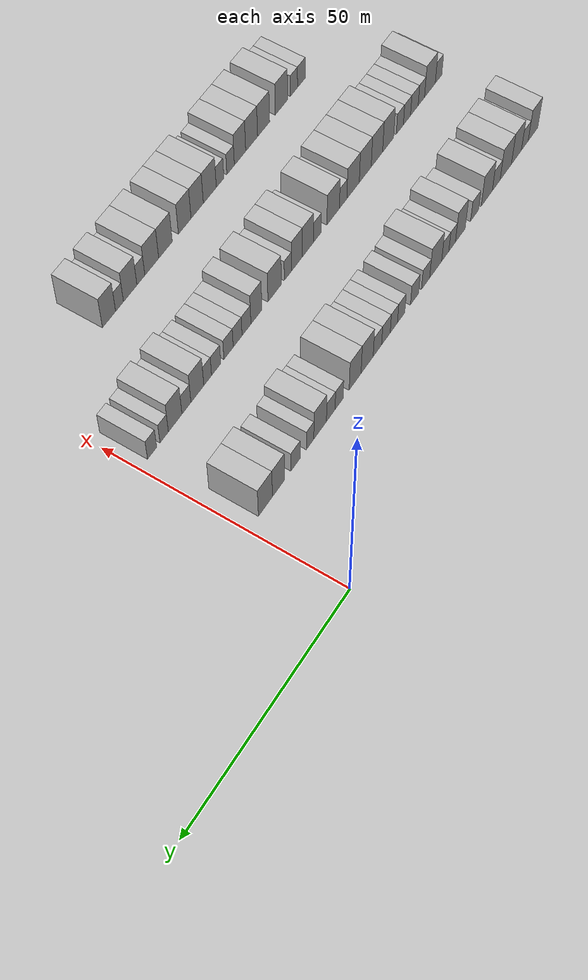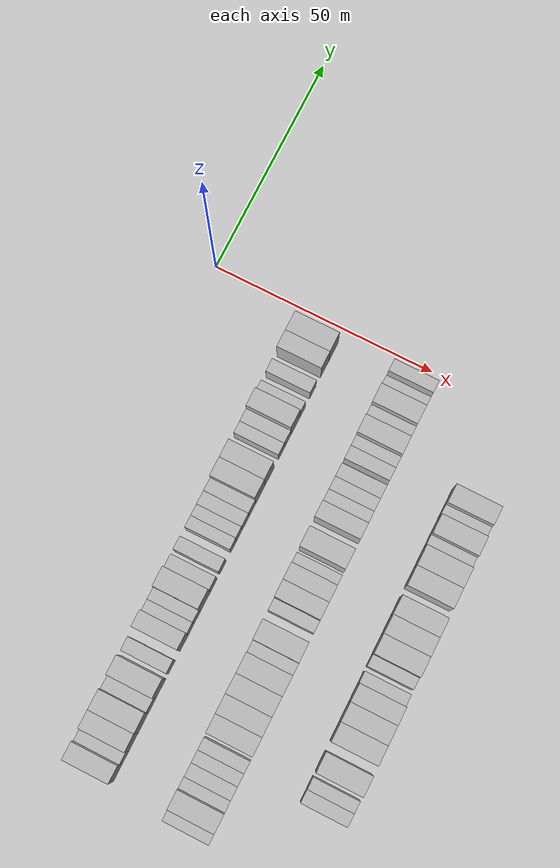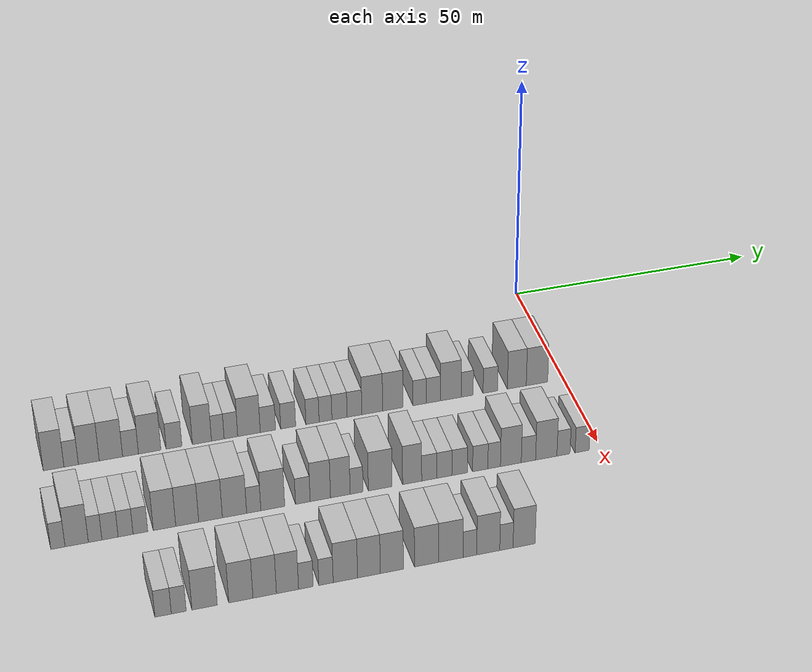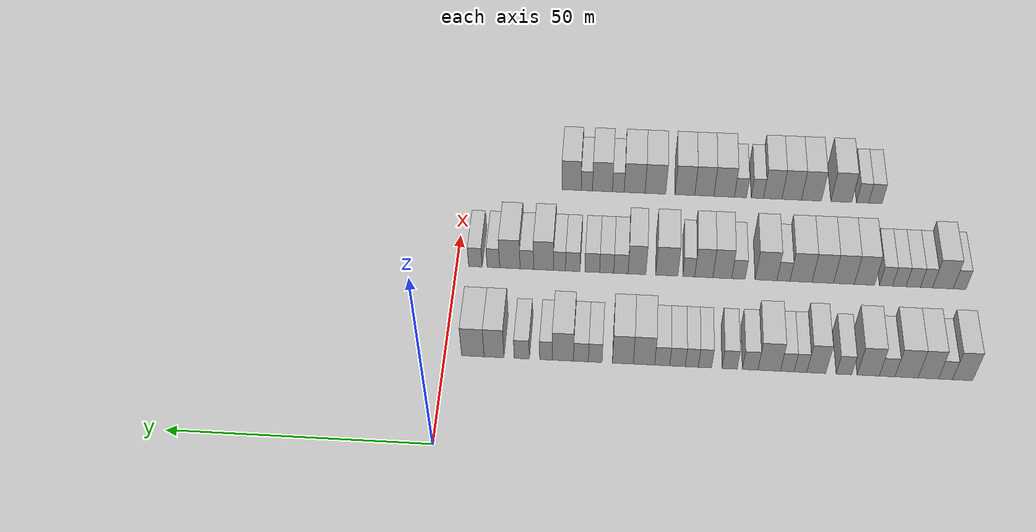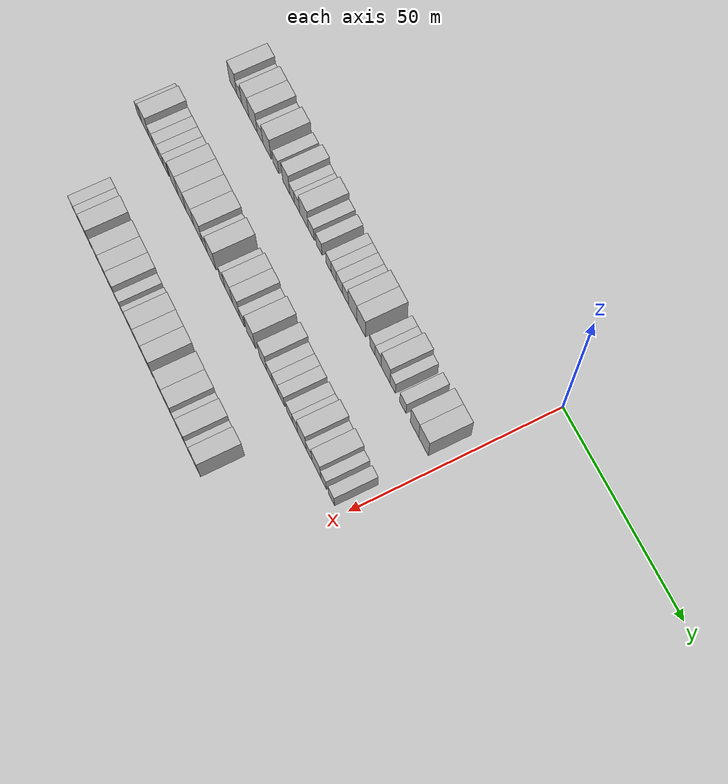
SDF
<sdf version="1.6">
 <world name="default">
  <model name="building_70">
   <static>1</static>
   <pose>25.0000 -99.3986 0 0.000000 0.000000 0.000000</pose>
   <link name="link">
    <pose>0 0 4.50 0 0 0</pose>
    <collision name="collision"><geometry><box><size>10.0000 3.8285 9.0000</size></box></geometry></collision>
    <visual name="visual">
     <cast_shadows>0</cast_shadows>
     <geometry><box><size>10.0000 3.8285 9.0000</size></box></geometry>
     <material>
      <script>
       <uri>model://HANNAS_wall/materials/scripts</uri>
       <uri>model://HANNAS_wall/materials/textures</uri>
       <name>vrc/HANNAS_wall</name>
      </script>
     </material>
    </visual>
   </link>
  </model>
  <model name="building_71">
   <static>1</static>
   <pose>25.0000 -96.1503 0 0.000000 0.000000 0.000000</pose>
   <link name="link">
    <pose>0 0 3.00 0 0 0</pose>
    <collision name="collision"><geometry><box><size>10.0000 2.6681 6.0000</size></box></geometry></collision>
    <visual name="visual">
     <cast_shadows>0</cast_shadows>
     <geometry><box><size>10.0000 2.6681 6.0000</size></box></geometry>
     <material>
      <script>
       <uri>model://HANNAS_wall/materials/scripts</uri>
       <uri>model://HANNAS_wall/materials/textures</uri>
       <name>vrc/HANNAS_wall</name>
      </script>
     </material>
    </visual>
   </link>
  </model>
  <model name="building_72">
   <static>1</static>
   <pose>25.0000 -92.8718 0 0.000000 0.000000 0.000000</pose>
   <link name="link">
    <pose>0 0 4.50 0 0 0</pose>
    <collision name="collision"><geometry><box><size>10.0000 3.8890 9.0000</size></box></geometry></collision>
    <visual name="visual">
     <cast_shadows>0</cast_shadows>
     <geometry><box><size>10.0000 3.8890 9.0000</size></box></geometry>
     <material>
      <script>
       <uri>model://HANNAS_wall/materials/scripts</uri>
       <uri>model://HANNAS_wall/materials/textures</uri>
       <name>vrc/HANNAS_wall</name>
      </script>
     </material>
    </visual>
   </link>
  </model>
  <model name="building_73">
   <static>1</static>
   <pose>25.0000 -88.7429 0 0.000000 0.000000 0.000000</pose>
   <link name="link">
    <pose>0 0 4.50 0 0 0</pose>
    <collision name="collision"><geometry><box><size>10.0000 4.3688 9.0000</size></box></geometry></collision>
    <visual name="visual">
     <cast_shadows>0</cast_shadows>
     <geometry><box><size>10.0000 4.3688 9.0000</size></box></geometry>
     <material>
      <script>
       <uri>model://HANNAS_wall/materials/scripts</uri>
       <uri>model://HANNAS_wall/materials/textures</uri>
       <name>vrc/HANNAS_wall</name>
      </script>
     </material>
    </visual>
   </link>
  </model>
  <model name="building_74">
   <static>1</static>
   <pose>25.0000 -85.0716 0 0.000000 0.000000 0.000000</pose>
   <link name="link">
    <pose>0 0 3.00 0 0 0</pose>
    <collision name="collision"><geometry><box><size>10.0000 2.9738 6.0000</size></box></geometry></collision>
    <visual name="visual">
     <cast_shadows>0</cast_shadows>
     <geometry><box><size>10.0000 2.9738 6.0000</size></box></geometry>
     <material>
      <script>
       <uri>model://HANNAS_wall/materials/scripts</uri>
       <uri>model://HANNAS_wall/materials/textures</uri>
       <name>vrc/HANNAS_wall</name>
      </script>
     </material>
    </visual>
   </link>
  </model>
  <model name="building_75">
   <static>1</static>
   <pose>25.0000 -81.4680 0 0.000000 0.000000 0.000000</pose>
   <link name="link">
    <pose>0 0 4.50 0 0 0</pose>
    <collision name="collision"><geometry><box><size>10.0000 4.2334 9.0000</size></box></geometry></collision>
    <visual name="visual">
     <cast_shadows>0</cast_shadows>
     <geometry><box><size>10.0000 4.2334 9.0000</size></box></geometry>
     <material>
      <script>
       <uri>model://HANNAS_wall/materials/scripts</uri>
       <uri>model://HANNAS_wall/materials/textures</uri>
       <name>vrc/HANNAS_wall</name>
      </script>
     </material>
    </visual>
   </link>
  </model>
  <model name="building_76">
   <static>1</static>
   <pose>25.0000 -76.8639 0 0.000000 0.000000 0.000000</pose>
   <link name="link">
    <pose>0 0 3.00 0 0 0</pose>
    <collision name="collision"><geometry><box><size>10.0000 2.9750 6.0000</size></box></geometry></collision>
    <visual name="visual">
     <cast_shadows>0</cast_shadows>
     <geometry><box><size>10.0000 2.9750 6.0000</size></box></geometry>
     <material>
      <script>
       <uri>model://HANNAS_wall/materials/scripts</uri>
       <uri>model://HANNAS_wall/materials/textures</uri>
       <name>vrc/HANNAS_wall</name>
      </script>
     </material>
    </visual>
   </link>
  </model>
  <model name="building_77">
   <static>1</static>
   <pose>25.0000 -71.5644 0 0.000000 0.000000 0.000000</pose>
   <link name="link">
    <pose>0 0 4.50 0 0 0</pose>
    <collision name="collision"><geometry><box><size>10.0000 3.6239 9.0000</size></box></geometry></collision>
    <visual name="visual">
     <cast_shadows>0</cast_shadows>
     <geometry><box><size>10.0000 3.6239 9.0000</size></box></geometry>
     <material>
      <script>
       <uri>model://HANNAS_wall/materials/scripts</uri>
       <uri>model://HANNAS_wall/materials/textures</uri>
       <name>vrc/HANNAS_wall</name>
      </script>
     </material>
    </visual>
   </link>
  </model>
  <model name="building_78">
   <static>1</static>
   <pose>25.0000 -68.5396 0 0.000000 0.000000 0.000000</pose>
   <link name="link">
    <pose>0 0 3.00 0 0 0</pose>
    <collision name="collision"><geometry><box><size>10.0000 2.4257 6.0000</size></box></geometry></collision>
    <visual name="visual">
     <cast_shadows>0</cast_shadows>
     <geometry><box><size>10.0000 2.4257 6.0000</size></box></geometry>
     <material>
      <script>
       <uri>model://HANNAS_wall/materials/scripts</uri>
       <uri>model://HANNAS_wall/materials/textures</uri>
       <name>vrc/HANNAS_wall</name>
      </script>
     </material>
    </visual>
   </link>
  </model>
  <model name="building_79">
   <static>1</static>
   <pose>25.0000 -66.0237 0 0.000000 0.000000 0.000000</pose>
   <link name="link">
    <pose>0 0 3.00 0 0 0</pose>
    <collision name="collision"><geometry><box><size>10.0000 2.6062 6.0000</size></box></geometry></collision>
    <visual name="visual">
     <cast_shadows>0</cast_shadows>
     <geometry><box><size>10.0000 2.6062 6.0000</size></box></geometry>
     <material>
      <script>
       <uri>model://HANNAS_wall/materials/scripts</uri>
       <uri>model://HANNAS_wall/materials/textures</uri>
       <name>vrc/HANNAS_wall</name>
      </script>
     </material>
    </visual>
   </link>
  </model>
  <model name="building_80">
   <static>1</static>
   <pose>25.0000 -62.5529 0 0.000000 0.000000 0.000000</pose>
   <link name="link">
    <pose>0 0 4.50 0 0 0</pose>
    <collision name="collision"><geometry><box><size>10.0000 4.3352 9.0000</size></box></geometry></collision>
    <visual name="visual">
     <cast_shadows>0</cast_shadows>
     <geometry><box><size>10.0000 4.3352 9.0000</size></box></geometry>
     <material>
      <script>
       <uri>model://HANNAS_wall/materials/scripts</uri>
       <uri>model://HANNAS_wall/materials/textures</uri>
       <name>vrc/HANNAS_wall</name>
      </script>
     </material>
    </visual>
   </link>
  </model>
  <model name="building_81">
   <static>1</static>
   <pose>25.0000 -58.9024 0 0.000000 0.000000 0.000000</pose>
   <link name="link">
    <pose>0 0 3.00 0 0 0</pose>
    <collision name="collision"><geometry><box><size>10.0000 2.9657 6.0000</size></box></geometry></collision>
    <visual name="visual">
     <cast_shadows>0</cast_shadows>
     <geometry><box><size>10.0000 2.9657 6.0000</size></box></geometry>
     <material>
      <script>
       <uri>model://HANNAS_wall/materials/scripts</uri>
       <uri>model://HANNAS_wall/materials/textures</uri>
       <name>vrc/HANNAS_wall</name>
      </script>
     </material>
    </visual>
   </link>
  </model>
  <model name="building_82">
   <static>1</static>
   <pose>25.0000 -54.9708 0 0.000000 0.000000 0.000000</pose>
   <link name="link">
    <pose>0 0 3.00 0 0 0</pose>
    <collision name="collision"><geometry><box><size>10.0000 2.8975 6.0000</size></box></geometry></collision>
    <visual name="visual">
     <cast_shadows>0</cast_shadows>
     <geometry><box><size>10.0000 2.8975 6.0000</size></box></geometry>
     <material>
      <script>
       <uri>model://HANNAS_wall/materials/scripts</uri>
       <uri>model://HANNAS_wall/materials/textures</uri>
       <name>vrc/HANNAS_wall</name>
      </script>
     </material>
    </visual>
   </link>
  </model>
  <model name="building_83">
   <static>1</static>
   <pose>25.0000 -50.2393 0 0.000000 0.000000 0.000000</pose>
   <link name="link">
    <pose>0 0 3.00 0 0 0</pose>
    <collision name="collision"><geometry><box><size>10.0000 2.5655 6.0000</size></box></geometry></collision>
    <visual name="visual">
     <cast_shadows>0</cast_shadows>
     <geometry><box><size>10.0000 2.5655 6.0000</size></box></geometry>
     <material>
      <script>
       <uri>model://HANNAS_wall/materials/scripts</uri>
       <uri>model://HANNAS_wall/materials/textures</uri>
       <name>vrc/HANNAS_wall</name>
      </script>
     </material>
    </visual>
   </link>
  </model>
  <model name="building_84">
   <static>1</static>
   <pose>25.0000 -47.6987 0 0.000000 0.000000 0.000000</pose>
   <link name="link">
    <pose>0 0 3.00 0 0 0</pose>
    <collision name="collision"><geometry><box><size>10.0000 2.5156 6.0000</size></box></geometry></collision>
    <visual name="visual">
     <cast_shadows>0</cast_shadows>
     <geometry><box><size>10.0000 2.5156 6.0000</size></box></geometry>
     <material>
      <script>
       <uri>model://HANNAS_wall/materials/scripts</uri>
       <uri>model://HANNAS_wall/materials/textures</uri>
       <name>vrc/HANNAS_wall</name>
      </script>
     </material>
    </visual>
   </link>
  </model>
  <model name="building_85">
   <static>1</static>
   <pose>25.0000 -44.9505 0 0.000000 0.000000 0.000000</pose>
   <link name="link">
    <pose>0 0 3.00 0 0 0</pose>
    <collision name="collision"><geometry><box><size>10.0000 2.9809 6.0000</size></box></geometry></collision>
    <visual name="visual">
     <cast_shadows>0</cast_shadows>
     <geometry><box><size>10.0000 2.9809 6.0000</size></box></geometry>
     <material>
      <script>
       <uri>model://HANNAS_wall/materials/scripts</uri>
       <uri>model://HANNAS_wall/materials/textures</uri>
       <name>vrc/HANNAS_wall</name>
      </script>
     </material>
    </visual>
   </link>
  </model>
  <model name="building_86">
   <static>1</static>
   <pose>25.0000 -42.0103 0 0.000000 0.000000 0.000000</pose>
   <link name="link">
    <pose>0 0 3.00 0 0 0</pose>
    <collision name="collision"><geometry><box><size>10.0000 2.8996 6.0000</size></box></geometry></collision>
    <visual name="visual">
     <cast_shadows>0</cast_shadows>
     <geometry><box><size>10.0000 2.8996 6.0000</size></box></geometry>
     <material>
      <script>
       <uri>model://HANNAS_wall/materials/scripts</uri>
       <uri>model://HANNAS_wall/materials/textures</uri>
       <name>vrc/HANNAS_wall</name>
      </script>
     </material>
    </visual>
   </link>
  </model>
  <model name="building_87">
   <static>1</static>
   <pose>25.0000 -38.5008 0 0.000000 0.000000 0.000000</pose>
   <link name="link">
    <pose>0 0 4.50 0 0 0</pose>
    <collision name="collision"><geometry><box><size>10.0000 4.1194 9.0000</size></box></geometry></collision>
    <visual name="visual">
     <cast_shadows>0</cast_shadows>
     <geometry><box><size>10.0000 4.1194 9.0000</size></box></geometry>
     <material>
      <script>
       <uri>model://HANNAS_wall/materials/scripts</uri>
       <uri>model://HANNAS_wall/materials/textures</uri>
       <name>vrc/HANNAS_wall</name>
      </script>
     </material>
    </visual>
   </link>
  </model>
  <model name="building_88">
   <static>1</static>
   <pose>25.0000 -34.4337 0 0.000000 0.000000 0.000000</pose>
   <link name="link">
    <pose>0 0 4.50 0 0 0</pose>
    <collision name="collision"><geometry><box><size>10.0000 4.0149 9.0000</size></box></geometry></collision>
    <visual name="visual">
     <cast_shadows>0</cast_shadows>
     <geometry><box><size>10.0000 4.0149 9.0000</size></box></geometry>
     <material>
      <script>
       <uri>model://HANNAS_wall/materials/scripts</uri>
       <uri>model://HANNAS_wall/materials/textures</uri>
       <name>vrc/HANNAS_wall</name>
      </script>
     </material>
    </visual>
   </link>
  </model>
  <model name="building_89">
   <static>1</static>
   <pose>25.0000 -29.0971 0 0.000000 0.000000 0.000000</pose>
   <link name="link">
    <pose>0 0 3.00 0 0 0</pose>
    <collision name="collision"><geometry><box><size>10.0000 2.6582 6.0000</size></box></geometry></collision>
    <visual name="visual">
     <cast_shadows>0</cast_shadows>
     <geometry><box><size>10.0000 2.6582 6.0000</size></box></geometry>
     <material>
      <script>
       <uri>model://HANNAS_wall/materials/scripts</uri>
       <uri>model://HANNAS_wall/materials/textures</uri>
       <name>vrc/HANNAS_wall</name>
      </script>
     </material>
    </visual>
   </link>
  </model>
  <model name="building_90">
   <static>1</static>
   <pose>25.0000 -26.3386 0 0.000000 0.000000 0.000000</pose>
   <link name="link">
    <pose>0 0 3.00 0 0 0</pose>
    <collision name="collision"><geometry><box><size>10.0000 2.8587 6.0000</size></box></geometry></collision>
    <visual name="visual">
     <cast_shadows>0</cast_shadows>
     <geometry><box><size>10.0000 2.8587 6.0000</size></box></geometry>
     <material>
      <script>
       <uri>model://HANNAS_wall/materials/scripts</uri>
       <uri>model://HANNAS_wall/materials/textures</uri>
       <name>vrc/HANNAS_wall</name>
      </script>
     </material>
    </visual>
   </link>
  </model>
  <model name="building_91">
   <static>1</static>
   <pose>25.0000 -22.8489 0 0.000000 0.000000 0.000000</pose>
   <link name="link">
    <pose>0 0 4.50 0 0 0</pose>
    <collision name="collision"><geometry><box><size>10.0000 4.1208 9.0000</size></box></geometry></collision>
    <visual name="visual">
     <cast_shadows>0</cast_shadows>
     <geometry><box><size>10.0000 4.1208 9.0000</size></box></geometry>
     <material>
      <script>
       <uri>model://HANNAS_wall/materials/scripts</uri>
       <uri>model://HANNAS_wall/materials/textures</uri>
       <name>vrc/HANNAS_wall</name>
      </script>
     </material>
    </visual>
   </link>
  </model>
  <model name="building_92">
   <static>1</static>
   <pose>25.0000 -19.5734 0 0.000000 0.000000 0.000000</pose>
   <link name="link">
    <pose>0 0 3.00 0 0 0</pose>
    <collision name="collision"><geometry><box><size>10.0000 2.4303 6.0000</size></box></geometry></collision>
    <visual name="visual">
     <cast_shadows>0</cast_shadows>
     <geometry><box><size>10.0000 2.4303 6.0000</size></box></geometry>
     <material>
      <script>
       <uri>model://HANNAS_wall/materials/scripts</uri>
       <uri>model://HANNAS_wall/materials/textures</uri>
       <name>vrc/HANNAS_wall</name>
      </script>
     </material>
    </visual>
   </link>
  </model>
  <model name="building_93">
   <static>1</static>
   <pose>25.0000 -14.8907 0 0.000000 0.000000 0.000000</pose>
   <link name="link">
    <pose>0 0 3.00 0 0 0</pose>
    <collision name="collision"><geometry><box><size>10.0000 2.9351 6.0000</size></box></geometry></collision>
    <visual name="visual">
     <cast_shadows>0</cast_shadows>
     <geometry><box><size>10.0000 2.9351 6.0000</size></box></geometry>
     <material>
      <script>
       <uri>model://HANNAS_wall/materials/scripts</uri>
       <uri>model://HANNAS_wall/materials/textures</uri>
       <name>vrc/HANNAS_wall</name>
      </script>
     </material>
    </visual>
   </link>
  </model>
  <model name="building_94">
   <static>1</static>
   <pose>25.0000 -9.5051 0 0.000000 0.000000 0.000000</pose>
   <link name="link">
    <pose>0 0 4.50 0 0 0</pose>
    <collision name="collision"><geometry><box><size>10.0000 3.8361 9.0000</size></box></geometry></collision>
    <visual name="visual">
     <cast_shadows>0</cast_shadows>
     <geometry><box><size>10.0000 3.8361 9.0000</size></box></geometry>
     <material>
      <script>
       <uri>model://HANNAS_wall/materials/scripts</uri>
       <uri>model://HANNAS_wall/materials/textures</uri>
       <name>vrc/HANNAS_wall</name>
      </script>
     </material>
    </visual>
   </link>
  </model>
  <model name="building_95">
   <static>1</static>
   <pose>25.0000 -5.3974 0 0.000000 0.000000 0.000000</pose>
   <link name="link">
    <pose>0 0 4.50 0 0 0</pose>
    <collision name="collision"><geometry><box><size>10.0000 4.3794 9.0000</size></box></geometry></collision>
    <visual name="visual">
     <cast_shadows>0</cast_shadows>
     <geometry><box><size>10.0000 4.3794 9.0000</size></box></geometry>
     <material>
      <script>
       <uri>model://HANNAS_wall/materials/scripts</uri>
       <uri>model://HANNAS_wall/materials/textures</uri>
       <name>vrc/HANNAS_wall</name>
      </script>
     </material>
    </visual>
   </link>
  </model>
  <model name="building_255">
   <static>1</static>
   <pose>47.0000 -101.6480 0 0.000000 0.000000 0.000000</pose>
   <link name="link">
    <pose>0 0 3.00 0 0 0</pose>
    <collision name="collision"><geometry><box><size>10.0000 2.5138 6.0000</size></box></geometry></collision>
    <visual name="visual">
     <cast_shadows>0</cast_shadows>
     <geometry><box><size>10.0000 2.5138 6.0000</size></box></geometry>
     <material>
      <script>
       <uri>model://HANNAS_wall/materials/scripts</uri>
       <uri>model://HANNAS_wall/materials/textures</uri>
       <name>vrc/HANNAS_wall</name>
      </script>
     </material>
    </visual>
   </link>
  </model>
  <model name="building_256">
   <static>1</static>
   <pose>47.0000 -98.3230 0 0.000000 0.000000 0.000000</pose>
   <link name="link">
    <pose>0 0 4.50 0 0 0</pose>
    <collision name="collision"><geometry><box><size>10.0000 4.1362 9.0000</size></box></geometry></collision>
    <visual name="visual">
     <cast_shadows>0</cast_shadows>
     <geometry><box><size>10.0000 4.1362 9.0000</size></box></geometry>
     <material>
      <script>
       <uri>model://HANNAS_wall/materials/scripts</uri>
       <uri>model://HANNAS_wall/materials/textures</uri>
       <name>vrc/HANNAS_wall</name>
      </script>
     </material>
    </visual>
   </link>
  </model>
  <model name="building_257">
   <static>1</static>
   <pose>47.0000 -95.0456 0 0.000000 0.000000 0.000000</pose>
   <link name="link">
    <pose>0 0 3.00 0 0 0</pose>
    <collision name="collision"><geometry><box><size>10.0000 2.4186 6.0000</size></box></geometry></collision>
    <visual name="visual">
     <cast_shadows>0</cast_shadows>
     <geometry><box><size>10.0000 2.4186 6.0000</size></box></geometry>
     <material>
      <script>
       <uri>model://HANNAS_wall/materials/scripts</uri>
       <uri>model://HANNAS_wall/materials/textures</uri>
       <name>vrc/HANNAS_wall</name>
      </script>
     </material>
    </visual>
   </link>
  </model>
  <model name="building_258">
   <static>1</static>
   <pose>47.0000 -92.3847 0 0.000000 0.000000 0.000000</pose>
   <link name="link">
    <pose>0 0 3.00 0 0 0</pose>
    <collision name="collision"><geometry><box><size>10.0000 2.9033 6.0000</size></box></geometry></collision>
    <visual name="visual">
     <cast_shadows>0</cast_shadows>
     <geometry><box><size>10.0000 2.9033 6.0000</size></box></geometry>
     <material>
      <script>
       <uri>model://HANNAS_wall/materials/scripts</uri>
       <uri>model://HANNAS_wall/materials/textures</uri>
       <name>vrc/HANNAS_wall</name>
      </script>
     </material>
    </visual>
   </link>
  </model>
  <model name="building_259">
   <static>1</static>
   <pose>47.0000 -89.5965 0 0.000000 0.000000 0.000000</pose>
   <link name="link">
    <pose>0 0 3.00 0 0 0</pose>
    <collision name="collision"><geometry><box><size>10.0000 2.6732 6.0000</size></box></geometry></collision>
    <visual name="visual">
     <cast_shadows>0</cast_shadows>
     <geometry><box><size>10.0000 2.6732 6.0000</size></box></geometry>
     <material>
      <script>
       <uri>model://HANNAS_wall/materials/scripts</uri>
       <uri>model://HANNAS_wall/materials/textures</uri>
       <name>vrc/HANNAS_wall</name>
      </script>
     </material>
    </visual>
   </link>
  </model>
  <model name="building_260">
   <static>1</static>
   <pose>47.0000 -86.9411 0 0.000000 0.000000 0.000000</pose>
   <link name="link">
    <pose>0 0 3.00 0 0 0</pose>
    <collision name="collision"><geometry><box><size>10.0000 2.6376 6.0000</size></box></geometry></collision>
    <visual name="visual">
     <cast_shadows>0</cast_shadows>
     <geometry><box><size>10.0000 2.6376 6.0000</size></box></geometry>
     <material>
      <script>
       <uri>model://HANNAS_wall/materials/scripts</uri>
       <uri>model://HANNAS_wall/materials/textures</uri>
       <name>vrc/HANNAS_wall</name>
      </script>
     </material>
    </visual>
   </link>
  </model>
  <model name="building_261">
   <static>1</static>
   <pose>47.0000 -82.5953 0 0.000000 0.000000 0.000000</pose>
   <link name="link">
    <pose>0 0 4.50 0 0 0</pose>
    <collision name="collision"><geometry><box><size>10.0000 4.0540 9.0000</size></box></geometry></collision>
    <visual name="visual">
     <cast_shadows>0</cast_shadows>
     <geometry><box><size>10.0000 4.0540 9.0000</size></box></geometry>
     <material>
      <script>
       <uri>model://HANNAS_wall/materials/scripts</uri>
       <uri>model://HANNAS_wall/materials/textures</uri>
       <name>vrc/HANNAS_wall</name>
      </script>
     </material>
    </visual>
   </link>
  </model>
  <model name="building_262">
   <static>1</static>
   <pose>47.0000 -78.4835 0 0.000000 0.000000 0.000000</pose>
   <link name="link">
    <pose>0 0 4.50 0 0 0</pose>
    <collision name="collision"><geometry><box><size>10.0000 4.1696 9.0000</size></box></geometry></collision>
    <visual name="visual">
     <cast_shadows>0</cast_shadows>
     <geometry><box><size>10.0000 4.1696 9.0000</size></box></geometry>
     <material>
      <script>
       <uri>model://HANNAS_wall/materials/scripts</uri>
       <uri>model://HANNAS_wall/materials/textures</uri>
       <name>vrc/HANNAS_wall</name>
      </script>
     </material>
    </visual>
   </link>
  </model>
  <model name="building_263">
   <static>1</static>
   <pose>47.0000 -74.2393 0 0.000000 0.000000 0.000000</pose>
   <link name="link">
    <pose>0 0 4.50 0 0 0</pose>
    <collision name="collision"><geometry><box><size>10.0000 4.3189 9.0000</size></box></geometry></collision>
    <visual name="visual">
     <cast_shadows>0</cast_shadows>
     <geometry><box><size>10.0000 4.3189 9.0000</size></box></geometry>
     <material>
      <script>
       <uri>model://HANNAS_wall/materials/scripts</uri>
       <uri>model://HANNAS_wall/materials/textures</uri>
       <name>vrc/HANNAS_wall</name>
      </script>
     </material>
    </visual>
   </link>
  </model>
  <model name="building_264">
   <static>1</static>
   <pose>47.0000 -69.8596 0 0.000000 0.000000 0.000000</pose>
   <link name="link">
    <pose>0 0 4.50 0 0 0</pose>
    <collision name="collision"><geometry><box><size>10.0000 4.4404 9.0000</size></box></geometry></collision>
    <visual name="visual">
     <cast_shadows>0</cast_shadows>
     <geometry><box><size>10.0000 4.4404 9.0000</size></box></geometry>
     <material>
      <script>
       <uri>model://HANNAS_wall/materials/scripts</uri>
       <uri>model://HANNAS_wall/materials/textures</uri>
       <name>vrc/HANNAS_wall</name>
      </script>
     </material>
    </visual>
   </link>
  </model>
  <model name="building_265">
   <static>1</static>
   <pose>47.0000 -66.3290 0 0.000000 0.000000 0.000000</pose>
   <link name="link">
    <pose>0 0 3.00 0 0 0</pose>
    <collision name="collision"><geometry><box><size>10.0000 2.6208 6.0000</size></box></geometry></collision>
    <visual name="visual">
     <cast_shadows>0</cast_shadows>
     <geometry><box><size>10.0000 2.6208 6.0000</size></box></geometry>
     <material>
      <script>
       <uri>model://HANNAS_wall/materials/scripts</uri>
       <uri>model://HANNAS_wall/materials/textures</uri>
       <name>vrc/HANNAS_wall</name>
      </script>
     </material>
    </visual>
   </link>
  </model>
  <model name="building_266">
   <static>1</static>
   <pose>47.0000 -62.8122 0 0.000000 0.000000 0.000000</pose>
   <link name="link">
    <pose>0 0 4.50 0 0 0</pose>
    <collision name="collision"><geometry><box><size>10.0000 4.4129 9.0000</size></box></geometry></collision>
    <visual name="visual">
     <cast_shadows>0</cast_shadows>
     <geometry><box><size>10.0000 4.4129 9.0000</size></box></geometry>
     <material>
      <script>
       <uri>model://HANNAS_wall/materials/scripts</uri>
       <uri>model://HANNAS_wall/materials/textures</uri>
       <name>vrc/HANNAS_wall</name>
      </script>
     </material>
    </visual>
   </link>
  </model>
  <model name="building_267">
   <static>1</static>
   <pose>47.0000 -57.2427 0 0.000000 0.000000 0.000000</pose>
   <link name="link">
    <pose>0 0 3.00 0 0 0</pose>
    <collision name="collision"><geometry><box><size>10.0000 2.7260 6.0000</size></box></geometry></collision>
    <visual name="visual">
     <cast_shadows>0</cast_shadows>
     <geometry><box><size>10.0000 2.7260 6.0000</size></box></geometry>
     <material>
      <script>
       <uri>model://HANNAS_wall/materials/scripts</uri>
       <uri>model://HANNAS_wall/materials/textures</uri>
       <name>vrc/HANNAS_wall</name>
      </script>
     </material>
    </visual>
   </link>
  </model>
  <model name="building_268">
   <static>1</static>
   <pose>47.0000 -53.9769 0 0.000000 0.000000 0.000000</pose>
   <link name="link">
    <pose>0 0 4.50 0 0 0</pose>
    <collision name="collision"><geometry><box><size>10.0000 3.8057 9.0000</size></box></geometry></collision>
    <visual name="visual">
     <cast_shadows>0</cast_shadows>
     <geometry><box><size>10.0000 3.8057 9.0000</size></box></geometry>
     <material>
      <script>
       <uri>model://HANNAS_wall/materials/scripts</uri>
       <uri>model://HANNAS_wall/materials/textures</uri>
       <name>vrc/HANNAS_wall</name>
      </script>
     </material>
    </visual>
   </link>
  </model>
  <model name="building_269">
   <static>1</static>
   <pose>47.0000 -50.2332 0 0.000000 0.000000 0.000000</pose>
   <link name="link">
    <pose>0 0 4.50 0 0 0</pose>
    <collision name="collision"><geometry><box><size>10.0000 3.6818 9.0000</size></box></geometry></collision>
    <visual name="visual">
     <cast_shadows>0</cast_shadows>
     <geometry><box><size>10.0000 3.6818 9.0000</size></box></geometry>
     <material>
      <script>
       <uri>model://HANNAS_wall/materials/scripts</uri>
       <uri>model://HANNAS_wall/materials/textures</uri>
       <name>vrc/HANNAS_wall</name>
      </script>
     </material>
    </visual>
   </link>
  </model>
  <model name="building_270">
   <static>1</static>
   <pose>47.0000 -47.1826 0 0.000000 0.000000 0.000000</pose>
   <link name="link">
    <pose>0 0 3.00 0 0 0</pose>
    <collision name="collision"><geometry><box><size>10.0000 2.4194 6.0000</size></box></geometry></collision>
    <visual name="visual">
     <cast_shadows>0</cast_shadows>
     <geometry><box><size>10.0000 2.4194 6.0000</size></box></geometry>
     <material>
      <script>
       <uri>model://HANNAS_wall/materials/scripts</uri>
       <uri>model://HANNAS_wall/materials/textures</uri>
       <name>vrc/HANNAS_wall</name>
      </script>
     </material>
    </visual>
   </link>
  </model>
  <model name="building_271">
   <static>1</static>
   <pose>47.0000 -42.7311 0 0.000000 0.000000 0.000000</pose>
   <link name="link">
    <pose>0 0 4.50 0 0 0</pose>
    <collision name="collision"><geometry><box><size>10.0000 4.4836 9.0000</size></box></geometry></collision>
    <visual name="visual">
     <cast_shadows>0</cast_shadows>
     <geometry><box><size>10.0000 4.4836 9.0000</size></box></geometry>
     <material>
      <script>
       <uri>model://HANNAS_wall/materials/scripts</uri>
       <uri>model://HANNAS_wall/materials/textures</uri>
       <name>vrc/HANNAS_wall</name>
      </script>
     </material>
    </visual>
   </link>
  </model>
  <model name="building_272">
   <static>1</static>
   <pose>47.0000 -36.6757 0 0.000000 0.000000 0.000000</pose>
   <link name="link">
    <pose>0 0 4.50 0 0 0</pose>
    <collision name="collision"><geometry><box><size>10.0000 3.6272 9.0000</size></box></geometry></collision>
    <visual name="visual">
     <cast_shadows>0</cast_shadows>
     <geometry><box><size>10.0000 3.6272 9.0000</size></box></geometry>
     <material>
      <script>
       <uri>model://HANNAS_wall/materials/scripts</uri>
       <uri>model://HANNAS_wall/materials/textures</uri>
       <name>vrc/HANNAS_wall</name>
      </script>
     </material>
    </visual>
   </link>
  </model>
  <model name="building_273">
   <static>1</static>
   <pose>47.0000 -33.4066 0 0.000000 0.000000 0.000000</pose>
   <link name="link">
    <pose>0 0 3.00 0 0 0</pose>
    <collision name="collision"><geometry><box><size>10.0000 2.9110 6.0000</size></box></geometry></collision>
    <visual name="visual">
     <cast_shadows>0</cast_shadows>
     <geometry><box><size>10.0000 2.9110 6.0000</size></box></geometry>
     <material>
      <script>
       <uri>model://HANNAS_wall/materials/scripts</uri>
       <uri>model://HANNAS_wall/materials/textures</uri>
       <name>vrc/HANNAS_wall</name>
      </script>
     </material>
    </visual>
   </link>
  </model>
  <model name="building_274">
   <static>1</static>
   <pose>47.0000 -30.5229 0 0.000000 0.000000 0.000000</pose>
   <link name="link">
    <pose>0 0 3.00 0 0 0</pose>
    <collision name="collision"><geometry><box><size>10.0000 2.8563 6.0000</size></box></geometry></collision>
    <visual name="visual">
     <cast_shadows>0</cast_shadows>
     <geometry><box><size>10.0000 2.8563 6.0000</size></box></geometry>
     <material>
      <script>
       <uri>model://HANNAS_wall/materials/scripts</uri>
       <uri>model://HANNAS_wall/materials/textures</uri>
       <name>vrc/HANNAS_wall</name>
      </script>
     </material>
    </visual>
   </link>
  </model>
  <model name="building_275">
   <static>1</static>
   <pose>47.0000 -27.5988 0 0.000000 0.000000 0.000000</pose>
   <link name="link">
    <pose>0 0 3.00 0 0 0</pose>
    <collision name="collision"><geometry><box><size>10.0000 2.9918 6.0000</size></box></geometry></collision>
    <visual name="visual">
     <cast_shadows>0</cast_shadows>
     <geometry><box><size>10.0000 2.9918 6.0000</size></box></geometry>
     <material>
      <script>
       <uri>model://HANNAS_wall/materials/scripts</uri>
       <uri>model://HANNAS_wall/materials/textures</uri>
       <name>vrc/HANNAS_wall</name>
      </script>
     </material>
    </visual>
   </link>
  </model>
  <model name="building_276">
   <static>1</static>
   <pose>47.0000 -23.6306 0 0.000000 0.000000 0.000000</pose>
   <link name="link">
    <pose>0 0 3.00 0 0 0</pose>
    <collision name="collision"><geometry><box><size>10.0000 2.9447 6.0000</size></box></geometry></collision>
    <visual name="visual">
     <cast_shadows>0</cast_shadows>
     <geometry><box><size>10.0000 2.9447 6.0000</size></box></geometry>
     <material>
      <script>
       <uri>model://HANNAS_wall/materials/scripts</uri>
       <uri>model://HANNAS_wall/materials/textures</uri>
       <name>vrc/HANNAS_wall</name>
      </script>
     </material>
    </visual>
   </link>
  </model>
  <model name="building_277">
   <static>1</static>
   <pose>47.0000 -20.9387 0 0.000000 0.000000 0.000000</pose>
   <link name="link">
    <pose>0 0 3.00 0 0 0</pose>
    <collision name="collision"><geometry><box><size>10.0000 2.4390 6.0000</size></box></geometry></collision>
    <visual name="visual">
     <cast_shadows>0</cast_shadows>
     <geometry><box><size>10.0000 2.4390 6.0000</size></box></geometry>
     <material>
      <script>
       <uri>model://HANNAS_wall/materials/scripts</uri>
       <uri>model://HANNAS_wall/materials/textures</uri>
       <name>vrc/HANNAS_wall</name>
      </script>
     </material>
    </visual>
   </link>
  </model>
  <model name="building_278">
   <static>1</static>
   <pose>47.0000 -17.6932 0 0.000000 0.000000 0.000000</pose>
   <link name="link">
    <pose>0 0 4.50 0 0 0</pose>
    <collision name="collision"><geometry><box><size>10.0000 4.0520 9.0000</size></box></geometry></collision>
    <visual name="visual">
     <cast_shadows>0</cast_shadows>
     <geometry><box><size>10.0000 4.0520 9.0000</size></box></geometry>
     <material>
      <script>
       <uri>model://HANNAS_wall/materials/scripts</uri>
       <uri>model://HANNAS_wall/materials/textures</uri>
       <name>vrc/HANNAS_wall</name>
      </script>
     </material>
    </visual>
   </link>
  </model>
  <model name="building_279">
   <static>1</static>
   <pose>47.0000 -14.2729 0 0.000000 0.000000 0.000000</pose>
   <link name="link">
    <pose>0 0 3.00 0 0 0</pose>
    <collision name="collision"><geometry><box><size>10.0000 2.7886 6.0000</size></box></geometry></collision>
    <visual name="visual">
     <cast_shadows>0</cast_shadows>
     <geometry><box><size>10.0000 2.7886 6.0000</size></box></geometry>
     <material>
      <script>
       <uri>model://HANNAS_wall/materials/scripts</uri>
       <uri>model://HANNAS_wall/materials/textures</uri>
       <name>vrc/HANNAS_wall</name>
      </script>
     </material>
    </visual>
   </link>
  </model>
  <model name="building_280">
   <static>1</static>
   <pose>47.0000 -10.7890 0 0.000000 0.000000 0.000000</pose>
   <link name="link">
    <pose>0 0 4.50 0 0 0</pose>
    <collision name="collision"><geometry><box><size>10.0000 4.1792 9.0000</size></box></geometry></collision>
    <visual name="visual">
     <cast_shadows>0</cast_shadows>
     <geometry><box><size>10.0000 4.1792 9.0000</size></box></geometry>
     <material>
      <script>
       <uri>model://HANNAS_wall/materials/scripts</uri>
       <uri>model://HANNAS_wall/materials/textures</uri>
       <name>vrc/HANNAS_wall</name>
      </script>
     </material>
    </visual>
   </link>
  </model>
  <model name="building_281">
   <static>1</static>
   <pose>47.0000 -7.4128 0 0.000000 0.000000 0.000000</pose>
   <link name="link">
    <pose>0 0 3.00 0 0 0</pose>
    <collision name="collision"><geometry><box><size>10.0000 2.5732 6.0000</size></box></geometry></collision>
    <visual name="visual">
     <cast_shadows>0</cast_shadows>
     <geometry><box><size>10.0000 2.5732 6.0000</size></box></geometry>
     <material>
      <script>
       <uri>model://HANNAS_wall/materials/scripts</uri>
       <uri>model://HANNAS_wall/materials/textures</uri>
       <name>vrc/HANNAS_wall</name>
      </script>
     </material>
    </visual>
   </link>
  </model>
  <model name="building_282">
   <static>1</static>
   <pose>47.0000 -3.7360 0 0.000000 0.000000 0.000000</pose>
   <link name="link">
    <pose>0 0 3.00 0 0 0</pose>
    <collision name="collision"><geometry><box><size>10.0000 2.7805 6.0000</size></box></geometry></collision>
    <visual name="visual">
     <cast_shadows>0</cast_shadows>
     <geometry><box><size>10.0000 2.7805 6.0000</size></box></geometry>
     <material>
      <script>
       <uri>model://HANNAS_wall/materials/scripts</uri>
       <uri>model://HANNAS_wall/materials/textures</uri>
       <name>vrc/HANNAS_wall</name>
      </script>
     </material>
    </visual>
   </link>
  </model>
  <model name="building_446">
   <static>1</static>
   <pose>69.0000 -86.7732 0 0.000000 0.000000 0.000000</pose>
   <link name="link">
    <pose>0 0 3.00 0 0 0</pose>
    <collision name="collision"><geometry><box><size>10.0000 2.8246 6.0000</size></box></geometry></collision>
    <visual name="visual">
     <cast_shadows>0</cast_shadows>
     <geometry><box><size>10.0000 2.8246 6.0000</size></box></geometry>
     <material>
      <script>
       <uri>model://HANNAS_wall/materials/scripts</uri>
       <uri>model://HANNAS_wall/materials/textures</uri>
       <name>vrc/HANNAS_wall</name>
      </script>
     </material>
    </visual>
   </link>
  </model>
  <model name="building_447">
   <static>1</static>
   <pose>69.0000 -84.0782 0 0.000000 0.000000 0.000000</pose>
   <link name="link">
    <pose>0 0 3.00 0 0 0</pose>
    <collision name="collision"><geometry><box><size>10.0000 2.5653 6.0000</size></box></geometry></collision>
    <visual name="visual">
     <cast_shadows>0</cast_shadows>
     <geometry><box><size>10.0000 2.5653 6.0000</size></box></geometry>
     <material>
      <script>
       <uri>model://HANNAS_wall/materials/scripts</uri>
       <uri>model://HANNAS_wall/materials/textures</uri>
       <name>vrc/HANNAS_wall</name>
      </script>
     </material>
    </visual>
   </link>
  </model>
  <model name="building_448">
   <static>1</static>
   <pose>69.0000 -79.5945 0 0.000000 0.000000 0.000000</pose>
   <link name="link">
    <pose>0 0 4.50 0 0 0</pose>
    <collision name="collision"><geometry><box><size>10.0000 4.4021 9.0000</size></box></geometry></collision>
    <visual name="visual">
     <cast_shadows>0</cast_shadows>
     <geometry><box><size>10.0000 4.4021 9.0000</size></box></geometry>
     <material>
      <script>
       <uri>model://HANNAS_wall/materials/scripts</uri>
       <uri>model://HANNAS_wall/materials/textures</uri>
       <name>vrc/HANNAS_wall</name>
      </script>
     </material>
    </visual>
   </link>
  </model>
  <model name="building_449">
   <static>1</static>
   <pose>69.0000 -73.2813 0 0.000000 0.000000 0.000000</pose>
   <link name="link">
    <pose>0 0 4.50 0 0 0</pose>
    <collision name="collision"><geometry><box><size>10.0000 4.2243 9.0000</size></box></geometry></collision>
    <visual name="visual">
     <cast_shadows>0</cast_shadows>
     <geometry><box><size>10.0000 4.2243 9.0000</size></box></geometry>
     <material>
      <script>
       <uri>model://HANNAS_wall/materials/scripts</uri>
       <uri>model://HANNAS_wall/materials/textures</uri>
       <name>vrc/HANNAS_wall</name>
      </script>
     </material>
    </visual>
   </link>
  </model>
  <model name="building_450">
   <static>1</static>
   <pose>69.0000 -69.0974 0 0.000000 0.000000 0.000000</pose>
   <link name="link">
    <pose>0 0 4.50 0 0 0</pose>
    <collision name="collision"><geometry><box><size>10.0000 4.1436 9.0000</size></box></geometry></collision>
    <visual name="visual">
     <cast_shadows>0</cast_shadows>
     <geometry><box><size>10.0000 4.1436 9.0000</size></box></geometry>
     <material>
      <script>
       <uri>model://HANNAS_wall/materials/scripts</uri>
       <uri>model://HANNAS_wall/materials/textures</uri>
       <name>vrc/HANNAS_wall</name>
      </script>
     </material>
    </visual>
   </link>
  </model>
  <model name="building_451">
   <static>1</static>
   <pose>69.0000 -65.0717 0 0.000000 0.000000 0.000000</pose>
   <link name="link">
    <pose>0 0 4.50 0 0 0</pose>
    <collision name="collision"><geometry><box><size>10.0000 3.9077 9.0000</size></box></geometry></collision>
    <visual name="visual">
     <cast_shadows>0</cast_shadows>
     <geometry><box><size>10.0000 3.9077 9.0000</size></box></geometry>
     <material>
      <script>
       <uri>model://HANNAS_wall/materials/scripts</uri>
       <uri>model://HANNAS_wall/materials/textures</uri>
       <name>vrc/HANNAS_wall</name>
      </script>
     </material>
    </visual>
   </link>
  </model>
  <model name="building_452">
   <static>1</static>
   <pose>69.0000 -61.8217 0 0.000000 0.000000 0.000000</pose>
   <link name="link">
    <pose>0 0 3.00 0 0 0</pose>
    <collision name="collision"><geometry><box><size>10.0000 2.5924 6.0000</size></box></geometry></collision>
    <visual name="visual">
     <cast_shadows>0</cast_shadows>
     <geometry><box><size>10.0000 2.5924 6.0000</size></box></geometry>
     <material>
      <script>
       <uri>model://HANNAS_wall/materials/scripts</uri>
       <uri>model://HANNAS_wall/materials/textures</uri>
       <name>vrc/HANNAS_wall</name>
      </script>
     </material>
    </visual>
   </link>
  </model>
  <model name="building_453">
   <static>1</static>
   <pose>69.0000 -58.2431 0 0.000000 0.000000 0.000000</pose>
   <link name="link">
    <pose>0 0 3.00 0 0 0</pose>
    <collision name="collision"><geometry><box><size>10.0000 2.5648 6.0000</size></box></geometry></collision>
    <visual name="visual">
     <cast_shadows>0</cast_shadows>
     <geometry><box><size>10.0000 2.5648 6.0000</size></box></geometry>
     <material>
      <script>
       <uri>model://HANNAS_wall/materials/scripts</uri>
       <uri>model://HANNAS_wall/materials/textures</uri>
       <name>vrc/HANNAS_wall</name>
      </script>
     </material>
    </visual>
   </link>
  </model>
  <model name="building_454">
   <static>1</static>
   <pose>69.0000 -54.7796 0 0.000000 0.000000 0.000000</pose>
   <link name="link">
    <pose>0 0 4.50 0 0 0</pose>
    <collision name="collision"><geometry><box><size>10.0000 4.3622 9.0000</size></box></geometry></collision>
    <visual name="visual">
     <cast_shadows>0</cast_shadows>
     <geometry><box><size>10.0000 4.3622 9.0000</size></box></geometry>
     <material>
      <script>
       <uri>model://HANNAS_wall/materials/scripts</uri>
       <uri>model://HANNAS_wall/materials/textures</uri>
       <name>vrc/HANNAS_wall</name>
      </script>
     </material>
    </visual>
   </link>
  </model>
  <model name="building_455">
   <static>1</static>
   <pose>69.0000 -50.5548 0 0.000000 0.000000 0.000000</pose>
   <link name="link">
    <pose>0 0 4.50 0 0 0</pose>
    <collision name="collision"><geometry><box><size>10.0000 4.0875 9.0000</size></box></geometry></collision>
    <visual name="visual">
     <cast_shadows>0</cast_shadows>
     <geometry><box><size>10.0000 4.0875 9.0000</size></box></geometry>
     <material>
      <script>
       <uri>model://HANNAS_wall/materials/scripts</uri>
       <uri>model://HANNAS_wall/materials/textures</uri>
       <name>vrc/HANNAS_wall</name>
      </script>
     </material>
    </visual>
   </link>
  </model>
  <model name="building_456">
   <static>1</static>
   <pose>69.0000 -46.4252 0 0.000000 0.000000 0.000000</pose>
   <link name="link">
    <pose>0 0 4.50 0 0 0</pose>
    <collision name="collision"><geometry><box><size>10.0000 4.1715 9.0000</size></box></geometry></collision>
    <visual name="visual">
     <cast_shadows>0</cast_shadows>
     <geometry><box><size>10.0000 4.1715 9.0000</size></box></geometry>
     <material>
      <script>
       <uri>model://HANNAS_wall/materials/scripts</uri>
       <uri>model://HANNAS_wall/materials/textures</uri>
       <name>vrc/HANNAS_wall</name>
      </script>
     </material>
    </visual>
   </link>
  </model>
  <model name="building_457">
   <static>1</static>
   <pose>69.0000 -40.1367 0 0.000000 0.000000 0.000000</pose>
   <link name="link">
    <pose>0 0 4.50 0 0 0</pose>
    <collision name="collision"><geometry><box><size>10.0000 4.4056 9.0000</size></box></geometry></collision>
    <visual name="visual">
     <cast_shadows>0</cast_shadows>
     <geometry><box><size>10.0000 4.4056 9.0000</size></box></geometry>
     <material>
      <script>
       <uri>model://HANNAS_wall/materials/scripts</uri>
       <uri>model://HANNAS_wall/materials/textures</uri>
       <name>vrc/HANNAS_wall</name>
      </script>
     </material>
    </visual>
   </link>
  </model>
  <model name="building_458">
   <static>1</static>
   <pose>69.0000 -35.7110 0 0.000000 0.000000 0.000000</pose>
   <link name="link">
    <pose>0 0 4.50 0 0 0</pose>
    <collision name="collision"><geometry><box><size>10.0000 4.4456 9.0000</size></box></geometry></collision>
    <visual name="visual">
     <cast_shadows>0</cast_shadows>
     <geometry><box><size>10.0000 4.4456 9.0000</size></box></geometry>
     <material>
      <script>
       <uri>model://HANNAS_wall/materials/scripts</uri>
       <uri>model://HANNAS_wall/materials/textures</uri>
       <name>vrc/HANNAS_wall</name>
      </script>
     </material>
    </visual>
   </link>
  </model>
  <model name="building_459">
   <static>1</static>
   <pose>69.0000 -32.2293 0 0.000000 0.000000 0.000000</pose>
   <link name="link">
    <pose>0 0 3.00 0 0 0</pose>
    <collision name="collision"><geometry><box><size>10.0000 2.5178 6.0000</size></box></geometry></collision>
    <visual name="visual">
     <cast_shadows>0</cast_shadows>
     <geometry><box><size>10.0000 2.5178 6.0000</size></box></geometry>
     <material>
      <script>
       <uri>model://HANNAS_wall/materials/scripts</uri>
       <uri>model://HANNAS_wall/materials/textures</uri>
       <name>vrc/HANNAS_wall</name>
      </script>
     </material>
    </visual>
   </link>
  </model>
  <model name="building_460">
   <static>1</static>
   <pose>69.0000 -28.8479 0 0.000000 0.000000 0.000000</pose>
   <link name="link">
    <pose>0 0 4.50 0 0 0</pose>
    <collision name="collision"><geometry><box><size>10.0000 4.2449 9.0000</size></box></geometry></collision>
    <visual name="visual">
     <cast_shadows>0</cast_shadows>
     <geometry><box><size>10.0000 4.2449 9.0000</size></box></geometry>
     <material>
      <script>
       <uri>model://HANNAS_wall/materials/scripts</uri>
       <uri>model://HANNAS_wall/materials/textures</uri>
       <name>vrc/HANNAS_wall</name>
      </script>
     </material>
    </visual>
   </link>
  </model>
  <model name="building_461">
   <static>1</static>
   <pose>69.0000 -25.4969 0 0.000000 0.000000 0.000000</pose>
   <link name="link">
    <pose>0 0 3.00 0 0 0</pose>
    <collision name="collision"><geometry><box><size>10.0000 2.4572 6.0000</size></box></geometry></collision>
    <visual name="visual">
     <cast_shadows>0</cast_shadows>
     <geometry><box><size>10.0000 2.4572 6.0000</size></box></geometry>
     <material>
      <script>
       <uri>model://HANNAS_wall/materials/scripts</uri>
       <uri>model://HANNAS_wall/materials/textures</uri>
       <name>vrc/HANNAS_wall</name>
      </script>
     </material>
    </visual>
   </link>
  </model>
  <model name="building_462">
   <static>1</static>
   <pose>69.0000 -22.2182 0 0.000000 0.000000 0.000000</pose>
   <link name="link">
    <pose>0 0 4.50 0 0 0</pose>
    <collision name="collision"><geometry><box><size>10.0000 4.1003 9.0000</size></box></geometry></collision>
    <visual name="visual">
     <cast_shadows>0</cast_shadows>
     <geometry><box><size>10.0000 4.1003 9.0000</size></box></geometry>
     <material>
      <script>
       <uri>model://HANNAS_wall/materials/scripts</uri>
       <uri>model://HANNAS_wall/materials/textures</uri>
       <name>vrc/HANNAS_wall</name>
      </script>
     </material>
    </visual>
   </link>
  </model>
 </world>
</sdf>
